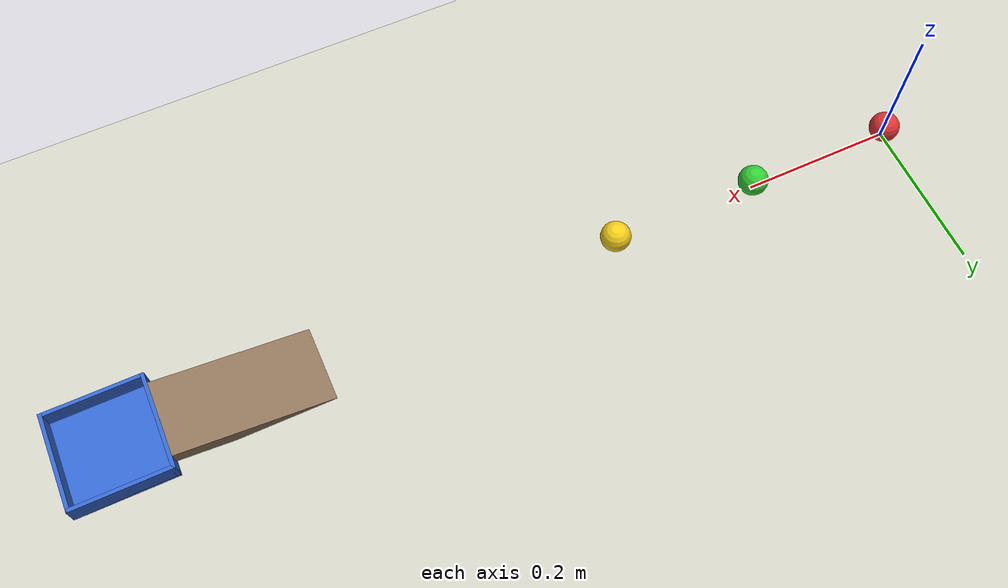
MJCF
<mujoco model="three_ball_relay_into_cup">
  <option timestep="0.002" gravity="0 0 -9.81"/>

  <visual>
    <global offwidth="1280" offheight="720"/>
  </visual>

  <worldbody>
    <light name="sun" pos="0.6 -0.5 1.5" dir="0 0.3 -1" directional="true"/>
    <geom name="floor" type="plane" size="3 3 0.1" pos="0 0 0" rgba="0.8 0.8 0.75 1"/>

    <!-- ramp: top surface rises from z=0 at x=0.80 to z=0.03 at x=1.00, meeting the cup rim -->
    <body name="ramp" pos="0 0 0">
      <geom name="ramp_slab" type="box" size="0.10112 0.05 0.01" pos="0.90148 0 0.00511" euler="0 -8.5308 0" rgba="0.55 0.45 0.35 1"/>
    </body>

    <!-- cup: fixed, open-top box cup; inner floor at z=0.004, rim at z=0.03, interior 0.12 x 0.12 -->
    <body name="cup" pos="1.065 0 0">
      <geom name="cup_base" type="box" size="0.065 0.065 0.002" pos="0 0 0.002" rgba="0.2 0.4 0.8 1"/>
      <geom name="cup_wall_front" type="box" size="0.0025 0.065 0.015" pos="-0.0625 0 0.015" rgba="0.2 0.4 0.8 1"/>
      <geom name="cup_wall_back" type="box" size="0.0025 0.065 0.015" pos="0.0625 0 0.015" rgba="0.2 0.4 0.8 1"/>
      <geom name="cup_wall_left" type="box" size="0.065 0.0025 0.015" pos="0 0.0625 0.015" rgba="0.2 0.4 0.8 1"/>
      <geom name="cup_wall_right" type="box" size="0.065 0.0025 0.015" pos="0 -0.0625 0.015" rgba="0.2 0.4 0.8 1"/>
    </body>

    <body name="ball1" pos="0 0 0.02">
      <freejoint name="ball1_free"/>
      <geom name="ball1_geom" type="sphere" size="0.02" condim="6" friction="1 0.005 0.001" rgba="0.9 0.2 0.2 1"/>
    </body>

    <body name="ball2" pos="0.2 0 0.02">
      <freejoint name="ball2_free"/>
      <geom name="ball2_geom" type="sphere" size="0.02" condim="6" friction="1 0.005 0.001" rgba="0.2 0.8 0.2 1"/>
    </body>

    <body name="ball3" pos="0.4 0 0.02">
      <freejoint name="ball3_free"/>
      <geom name="ball3_geom" type="sphere" size="0.02" condim="6" friction="1 0.005 0.001" rgba="0.95 0.8 0.1 1"/>
    </body>
  </worldbody>

  <contact>
    <!-- nearly elastic, frictionless ball-to-ball impacts so momentum is handed down the line -->
    <pair name="pair_b1_b2" geom1="ball1_geom" geom2="ball2_geom" condim="1" solref="-100000 -5"/>
    <pair name="pair_b2_b3" geom1="ball2_geom" geom2="ball3_geom" condim="1" solref="-100000 -5"/>
  </contact>

  <keyframe>
    <key name="start" qpos="0 0 0.02 1 0 0 0  0.2 0 0.02 1 0 0 0  0.4 0 0.02 1 0 0 0" qvel="2 0 0 0 100 0  0 0 0 0 0 0  0 0 0 0 0 0"/>
  </keyframe>
</mujoco>
